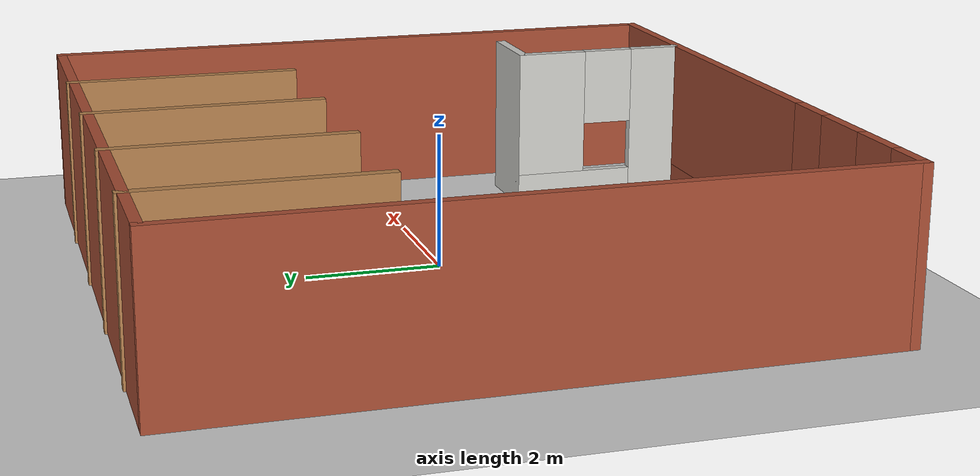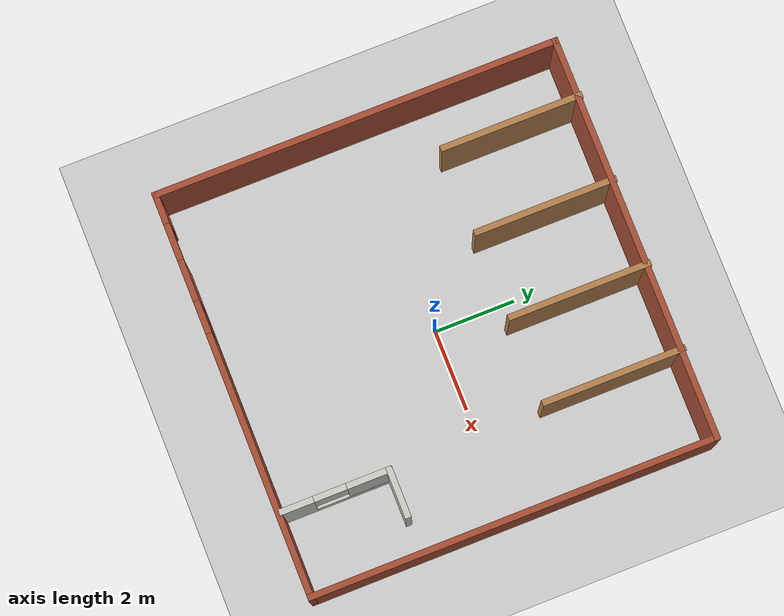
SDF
<sdf version="1.7">
 <world name="default">
  <light name="sun" type="directional">
   <pose>0 0 10 0 -0 0</pose>
   <diffuse>0.8 0.8 0.8 1</diffuse>
   <specular>0.2 0.2 0.2 1</specular>
   <attenuation>
    <range>1000</range>
    <constant>0.9</constant>
    <linear>0.01</linear>
    <quadratic>0.001</quadratic>
   </attenuation>
   <direction>-0.5 0.1 -0.9</direction>
   <spot><inner_angle>0</inner_angle><outer_angle>0</outer_angle><falloff>0</falloff></spot>
  </light>
  <model name="ground_plane">
   <static>1</static>
   <link name="link">
    <collision name="collision">
     <geometry><plane><normal>0 0 1</normal><size>100 100</size></plane></geometry>
     <surface>
      <contact><collide_bitmask>65535</collide_bitmask></contact>
      <friction><ode><mu>100</mu><mu2>50</mu2></ode></friction>
     </surface>
    </collision>
    <visual name="visual">
     <cast_shadows>0</cast_shadows>
     <geometry><plane><normal>0 0 1</normal><size>100 100</size></plane></geometry>
     <material>
      <script><uri>file://media/materials/scripts/gazebo.material</uri><name>Gazebo/Grey</name></script>
     </material>
    </visual>
   </link>
  </model>
  <gravity>0 0 -9.8</gravity>
  <magnetic_field>6e-06 2.3e-05 -4.2e-05</magnetic_field>
  <atmosphere type="adiabatic"/>
  <physics type="ode">
   <max_step_size>0.001</max_step_size>
   <real_time_factor>1</real_time_factor>
   <real_time_update_rate>1000</real_time_update_rate>
  </physics>
  <scene><ambient>0.4 0.4 0.4 1</ambient><background>0.7 0.7 0.7 1</background><shadows>1</shadows></scene>
  <audio><device>default</device></audio>
  <spherical_coordinates>
   <surface_model>EARTH_WGS84</surface_model>
   <latitude_deg>0</latitude_deg>
   <longitude_deg>0</longitude_deg>
   <elevation>0</elevation>
   <heading_deg>0</heading_deg>
  </spherical_coordinates>
  <model name="new_resto">
   <pose>-0.038594 0.042646 0 0 -0 0</pose>
   <link name="Wall_0">
    <pose>-0 -4.96567 0 0 -0 0</pose>
    <visual name="Wall_0_Visual_0">
     <pose>-4.60261 0 1.25 0 -0 0</pose>
     <geometry><box><size>0.794781 0.15 2.5</size></box></geometry>
     <material>
      <script><uri>file://media/materials/scripts/gazebo.material</uri><name>Gazebo/Bricks</name></script>
      <ambient>1 1 1 1</ambient>
     </material>
     <meta><layer>0</layer></meta>
    </visual>
    <collision name="Wall_0_Collision_0">
     <geometry><box><size>0.794781 0.15 2.5</size></box></geometry>
     <pose>-4.60261 0 1.25 0 -0 0</pose>
    </collision>
    <visual name="Wall_0_Visual_1">
     <pose>-2.79974 0 1.25 0 -0 0</pose>
     <geometry><box><size>1.01096 0.15 2.5</size></box></geometry>
     <material>
      <script><uri>file://media/materials/scripts/gazebo.material</uri><name>Gazebo/Bricks</name></script>
      <ambient>1 1 1 1</ambient>
     </material>
     <meta><layer>0</layer></meta>
    </visual>
    <collision name="Wall_0_Collision_1">
     <geometry><box><size>1.01096 0.15 2.5</size></box></geometry>
     <pose>-2.79974 0 1.25 0 -0 0</pose>
    </collision>
    <visual name="Wall_0_Visual_2">
     <pose>1.35287 0 0.25 0 -0 0</pose>
     <geometry><box><size>7.29426 0.15 0.5</size></box></geometry>
     <material>
      <script><uri>file://media/materials/scripts/gazebo.material</uri><name>Gazebo/Bricks</name></script>
      <ambient>1 1 1 1</ambient>
     </material>
     <meta><layer>0</layer></meta>
    </visual>
    <collision name="Wall_0_Collision_2">
     <geometry><box><size>7.29426 0.15 0.5</size></box></geometry>
     <pose>1.35287 0 0.25 0 -0 0</pose>
    </collision>
    <visual name="Wall_0_Visual_3">
     <pose>1.75287 0 1.5 0 -0 0</pose>
     <geometry><box><size>6.49426 0.15 2</size></box></geometry>
     <material>
      <script><uri>file://media/materials/scripts/gazebo.material</uri><name>Gazebo/Bricks</name></script>
      <ambient>1 1 1 1</ambient>
     </material>
     <meta><layer>0</layer></meta>
    </visual>
    <collision name="Wall_0_Collision_3">
     <geometry><box><size>6.49426 0.15 2</size></box></geometry>
     <pose>1.75287 0 1.5 0 -0 0</pose>
    </collision>
    <visual name="Wall_0_Visual_4">
     <pose>-1.89426 0 1.9 0 -0 0</pose>
     <geometry><box><size>0.8 0.15 1.2</size></box></geometry>
     <material>
      <script><uri>file://media/materials/scripts/gazebo.material</uri><name>Gazebo/Bricks</name></script>
      <ambient>1 1 1 1</ambient>
     </material>
     <meta><layer>0</layer></meta>
    </visual>
    <collision name="Wall_0_Collision_4">
     <geometry><box><size>0.8 0.15 1.2</size></box></geometry>
     <pose>-1.89426 0 1.9 0 -0 0</pose>
    </collision>
    <visual name="Wall_0_Visual_5">
     <pose>-3.75522 0 2.25 0 -0 0</pose>
     <geometry><box><size>0.9 0.15 0.5</size></box></geometry>
     <material>
      <script><uri>file://media/materials/scripts/gazebo.material</uri><name>Gazebo/Bricks</name></script>
      <ambient>1 1 1 1</ambient>
     </material>
     <meta><layer>0</layer></meta>
    </visual>
    <collision name="Wall_0_Collision_5">
     <geometry><box><size>0.9 0.15 0.5</size></box></geometry>
     <pose>-3.75522 0 2.25 0 -0 0</pose>
    </collision>
   </link>
   <link name="Wall_11">
    <collision name="Wall_11_Collision">
     <geometry><box><size>3.5 0.15 2.5</size></box></geometry>
     <pose>0 0 1.25 0 -0 0</pose>
    </collision>
    <visual name="Wall_11_Visual">
     <pose>0 0 1.25 0 -0 0</pose>
     <geometry><box><size>3.5 0.15 2.5</size></box></geometry>
     <material>
      <script><uri>file://media/materials/scripts/gazebo.material</uri><name>Gazebo/Wood</name></script>
      <ambient>1 1 1 1</ambient>
     </material>
     <meta><layer>0</layer></meta>
    </visual>
    <pose>0.667562 3.2451 0 0 -0 -1.5708</pose>
   </link>
   <link name="Wall_13">
    <collision name="Wall_13_Collision">
     <geometry><box><size>3.5 0.15 2.5</size></box></geometry>
     <pose>0 0 1.25 0 -0 0</pose>
    </collision>
    <visual name="Wall_13_Visual">
     <pose>0 0 1.25 0 -0 0</pose>
     <geometry><box><size>3.5 0.15 2.5</size></box></geometry>
     <material>
      <script><uri>file://media/materials/scripts/gazebo.material</uri><name>Gazebo/Wood</name></script>
      <ambient>1 1 1 1</ambient>
     </material>
     <meta><layer>0</layer></meta>
    </visual>
    <pose>2.76756 3.2451 0 0 -0 1.5708</pose>
   </link>
   <link name="Wall_15">
    <pose>2.90024 -3.574 0 0 -0 1.5708</pose>
    <visual name="Wall_15_Visual_0">
     <pose>-0.958925 0 1.25 0 -0 0</pose>
     <geometry><box><size>0.83215 0.15 2.5</size></box></geometry>
     <material>
      <script><uri>file://media/materials/scripts/gazebo.material</uri><name>Gazebo/CeilingTiled</name></script>
      <ambient>1 1 1 1</ambient>
     </material>
     <meta><layer>0</layer></meta>
    </visual>
    <collision name="Wall_15_Collision_0">
     <geometry><box><size>0.83215 0.15 2.5</size></box></geometry>
     <pose>-0.958925 0 1.25 0 -0 0</pose>
    </collision>
    <visual name="Wall_15_Visual_1">
     <pose>0.416075 0 0.25 0 -0 0</pose>
     <geometry><box><size>1.91785 0.15 0.5</size></box></geometry>
     <material>
      <script><uri>file://media/materials/scripts/gazebo.material</uri><name>Gazebo/CeilingTiled</name></script>
      <ambient>1 1 1 1</ambient>
     </material>
     <meta><layer>0</layer></meta>
    </visual>
    <collision name="Wall_15_Collision_1">
     <geometry><box><size>1.91785 0.15 0.5</size></box></geometry>
     <pose>0.416075 0 0.25 0 -0 0</pose>
    </collision>
    <visual name="Wall_15_Visual_2">
     <pose>0.816075 0 1.5 0 -0 0</pose>
     <geometry><box><size>1.11785 0.15 2</size></box></geometry>
     <material>
      <script><uri>file://media/materials/scripts/gazebo.material</uri><name>Gazebo/CeilingTiled</name></script>
      <ambient>1 1 1 1</ambient>
     </material>
     <meta><layer>0</layer></meta>
    </visual>
    <collision name="Wall_15_Collision_2">
     <geometry><box><size>1.11785 0.15 2</size></box></geometry>
     <pose>0.816075 0 1.5 0 -0 0</pose>
    </collision>
    <visual name="Wall_15_Visual_3">
     <pose>-0.14285 0 1.9 0 -0 0</pose>
     <geometry><box><size>0.8 0.15 1.2</size></box></geometry>
     <material>
      <script><uri>file://media/materials/scripts/gazebo.material</uri><name>Gazebo/CeilingTiled</name></script>
      <ambient>1 1 1 1</ambient>
     </material>
     <meta><layer>0</layer></meta>
    </visual>
    <collision name="Wall_15_Collision_3">
     <geometry><box><size>0.8 0.15 1.2</size></box></geometry>
     <pose>-0.14285 0 1.9 0 -0 0</pose>
    </collision>
   </link>
   <link name="Wall_16">
    <collision name="Wall_16_Collision">
     <geometry><box><size>1.25 0.15 2.5</size></box></geometry>
     <pose>0 0 1.25 0 -0 0</pose>
    </collision>
    <visual name="Wall_16_Visual">
     <pose>0 0 1.25 0 -0 0</pose>
     <geometry><box><size>1.25 0.15 2.5</size></box></geometry>
     <material>
      <script><uri>file://media/materials/scripts/gazebo.material</uri><name>Gazebo/CeilingTiled</name></script>
      <ambient>1 1 1 1</ambient>
     </material>
     <meta><layer>0</layer></meta>
    </visual>
    <pose>3.45024 -2.274 0 0 -0 0</pose>
   </link>
   <link name="Wall_3">
    <collision name="Wall_3_Collision">
     <geometry><box><size>10 0.15 2.5</size></box></geometry>
     <pose>0 0 1.25 0 -0 0</pose>
    </collision>
    <visual name="Wall_3_Visual">
     <pose>0 0 1.25 0 -0 0</pose>
     <geometry><box><size>10 0.15 2.5</size></box></geometry>
     <material>
      <script><uri>file://media/materials/scripts/gazebo.material</uri><name>Gazebo/Bricks</name></script>
      <ambient>1 1 1 1</ambient>
     </material>
     <meta><layer>0</layer></meta>
    </visual>
    <pose>-4.925 -0.040668 0 0 -0 1.5708</pose>
   </link>
   <link name="Wall_4">
    <collision name="Wall_4_Collision">
     <geometry><box><size>10 0.15 2.5</size></box></geometry>
     <pose>0 0 1.25 0 -0 0</pose>
    </collision>
    <visual name="Wall_4_Visual">
     <pose>0 0 1.25 0 -0 0</pose>
     <geometry><box><size>10 0.15 2.5</size></box></geometry>
     <material>
      <script><uri>file://media/materials/scripts/gazebo.material</uri><name>Gazebo/Bricks</name></script>
      <ambient>1 1 1 1</ambient>
     </material>
     <meta><layer>0</layer></meta>
    </visual>
    <pose>-0 4.88433 0 0 -0 0</pose>
   </link>
   <link name="Wall_5">
    <collision name="Wall_5_Collision">
     <geometry><box><size>10 0.15 2.5</size></box></geometry>
     <pose>0 0 1.25 0 -0 0</pose>
    </collision>
    <visual name="Wall_5_Visual">
     <pose>0 0 1.25 0 -0 0</pose>
     <geometry><box><size>10 0.15 2.5</size></box></geometry>
     <material>
      <script><uri>file://media/materials/scripts/gazebo.material</uri><name>Gazebo/Bricks</name></script>
      <ambient>1 1 1 1</ambient>
     </material>
     <meta><layer>0</layer></meta>
    </visual>
    <pose>4.925 -0.040668 0 0 -0 -1.5708</pose>
   </link>
   <link name="Wall_7">
    <collision name="Wall_7_Collision">
     <geometry><box><size>3.5 0.15 2.5</size></box></geometry>
     <pose>0 0 1.25 0 -0 0</pose>
    </collision>
    <visual name="Wall_7_Visual">
     <pose>0 0 1.25 0 -0 0</pose>
     <geometry><box><size>3.5 0.15 2.5</size></box></geometry>
     <material>
      <script><uri>file://media/materials/scripts/gazebo.material</uri><name>Gazebo/Wood</name></script>
      <ambient>1 1 1 1</ambient>
     </material>
     <meta><layer>0</layer></meta>
    </visual>
    <pose>-3.53244 3.2451 0 0 -0 -1.5708</pose>
   </link>
   <link name="Wall_9">
    <collision name="Wall_9_Collision">
     <geometry><box><size>3.5 0.15 2.5</size></box></geometry>
     <pose>0 0 1.25 0 -0 0</pose>
    </collision>
    <visual name="Wall_9_Visual">
     <pose>0 0 1.25 0 -0 0</pose>
     <geometry><box><size>3.5 0.15 2.5</size></box></geometry>
     <material>
      <script><uri>file://media/materials/scripts/gazebo.material</uri><name>Gazebo/Wood</name></script>
      <ambient>1 1 1 1</ambient>
     </material>
     <meta><layer>0</layer></meta>
    </visual>
    <pose>-1.43244 3.2451 0 0 -0 1.5708</pose>
   </link>
   <static>1</static>
  </model>
 </world>
</sdf>
